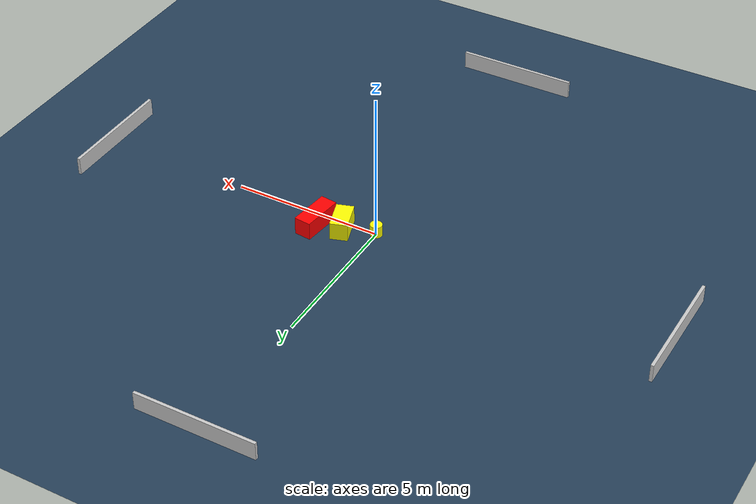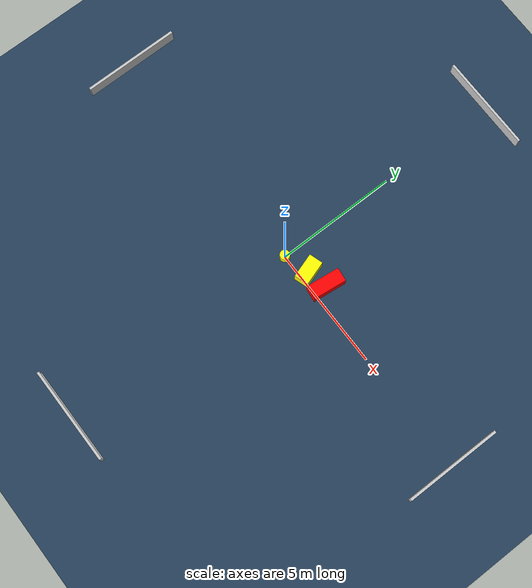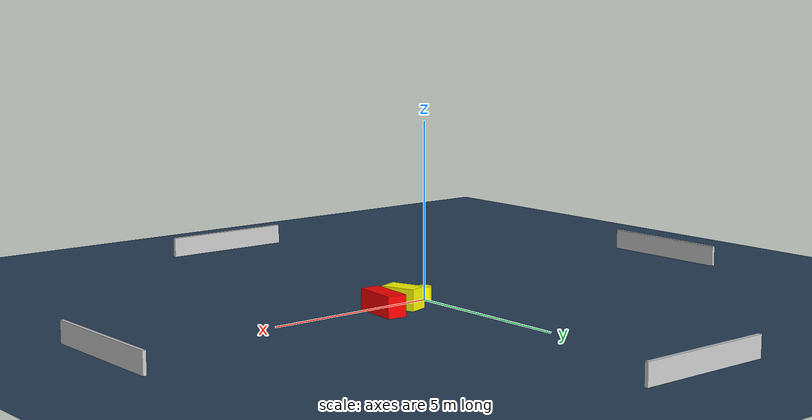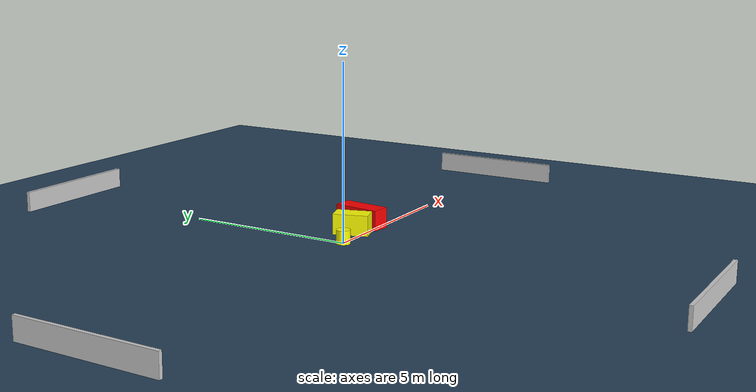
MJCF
<?xml version="1.0" ?>
<mujoco model="generated_environment">
  <option timestep="0.01" integrator="RK4" cone="elliptic"/>
  <default>
    <geom density="1"/>
  </default>
  <asset>
    <texture builtin="gradient" height="3072" name="skybox" rgb1="0.3 0.5 0.7" rgb2="0 0 0" type="skybox" width="512"/>
    <texture builtin="checker" height="300" name="groundplane" rgb1="0.2 0.3 0.4" rgb2="0.1 0.2 0.3" type="2d" width="300"/>
    <material name="groundplane" reflectance="0.2" texrepeat="5 5" texture="groundplane"/>
  </asset>
  <worldbody>
    <light dir="0 0 -1" directional="true" pos="0 0 1.5"/>
    <geom condim="3" friction="0.5 0.005 0.001" material="groundplane" name="floor" pos="0 0 0" size="0 0 0.05" type="plane"/>
    <body name="walls">
      <geom name="wall_1" condim="4" pos="-10.0 0.0 0.3" rgba="0.800000011920929 0.800000011920929 0.800000011920929 1.0" size="0.05 2.0 0.3" type="box"/>
      <geom name="wall_2" condim="4" pos="10.0 0.0 0.3" rgba="0.800000011920929 0.800000011920929 0.800000011920929 1.0" size="0.05 2.0 0.3" type="box"/>
      <geom name="wall_3" condim="4" pos="0.0 -10.0 0.3" rgba="0.800000011920929 0.800000011920929 0.800000011920929 1.0" size="2.0 0.05 0.3" type="box"/>
      <geom name="wall_4" condim="4" pos="0.0 10.0 0.3" rgba="0.800000011920929 0.800000011920929 0.800000011920929 1.0" size="2.0 0.05 0.3" type="box"/>
    </body>
    <body name="robot">
      <joint name="joint_x" type="slide" pos="0 0 0" axis="1 0 0"/>
      <joint name="joint_y" type="slide" pos="0 0 0" axis="0 1 0"/>
      <geom name="robot" type="cylinder" pos="0.0 0.0 0.2" size="0.2 0.2 0.0" mass="5.0" friction="1.0 0.005 0.0001" condim="4" rgba="1.0 1.0 0.0 1.0"/>
    </body>
    <body name="obstacle_1_movable">
      <geom name="obstacle_1_movable" condim="4" pos="1.0401519051492323 0.33560525741201935 0.3" euler="0 0 197.9623412206828" friction="0.0 0.005 0.001" rgba="1.0 1.0 0.0 1.0" size="0.28781903197570635 0.5088369695287482 0.3" type="box" mass="0.1"/>
      <joint type="free"/>
    </body>
    <body name="obstacle_2_static">
      <geom name="obstacle_2_static" condim="4" pos="1.8772993326337821 0.5291802717076322 0.3" euler="0 0 353.44288127612947" friction="0.0 0.005 0.001" rgba="1.0 0.0 0.0 1.0" size="0.28203813752629836 0.6917261999972737 0.3" type="box"/>
    </body>
  </worldbody>
  <actuator>
    <motor name="actuator_x" joint="joint_x" gear="1" ctrlrange="-1 1"/>
    <motor name="actuator_y" joint="joint_y" gear="1" ctrlrange="-1 1"/>
  </actuator>
</mujoco>
